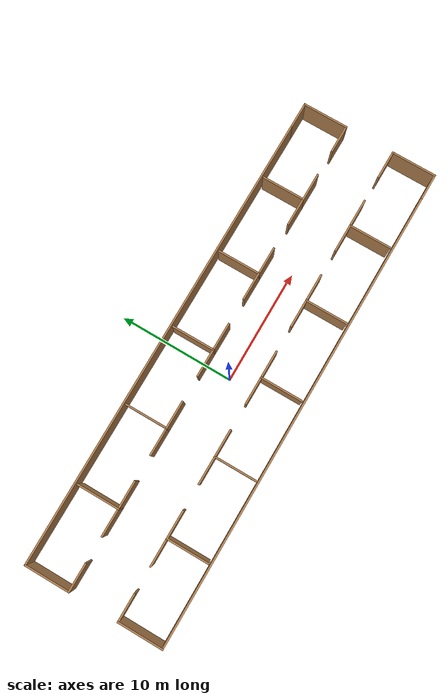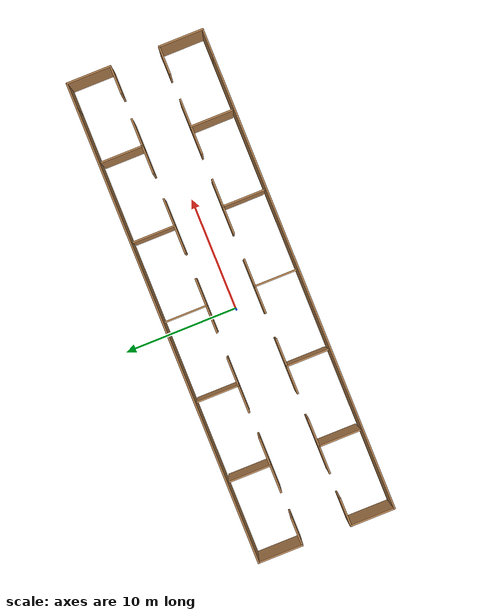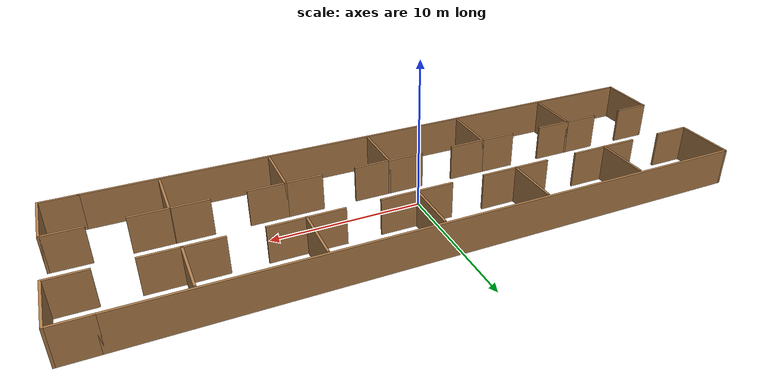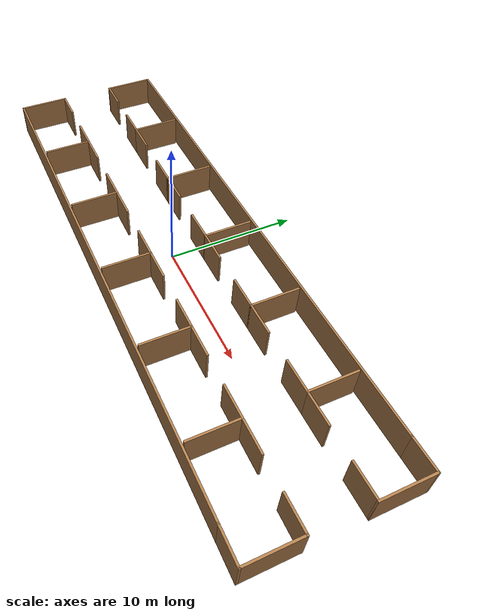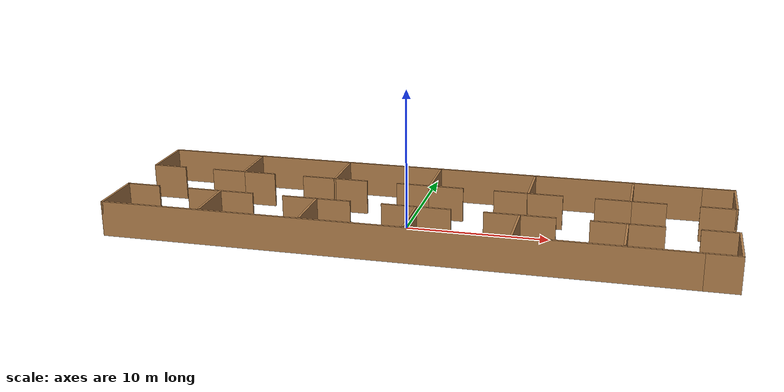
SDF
<?xml version='1.0'?>
<sdf version='1.7'>
  <model name='office'>
    <pose>1.15 0 0 0 -0 0</pose>
    <link name='Wall_0'>
      <collision name='Wall_0_Collision'>
        <geometry>
          <box>
            <size>40.15 0.15 2.5</size>
          </box>
        </geometry>
        <pose>0 0 1.25 0 -0 0</pose>
      </collision>
      <visual name='Wall_0_Visual'>
        <pose>0 0 1.25 0 -0 0</pose>
        <geometry>
          <box>
            <size>40.15 0.15 2.5</size>
          </box>
        </geometry>
        <material>
          <script>
            <uri>file://media/materials/scripts/gazebo.material</uri>
            <name>Gazebo/Wood</name>
          </script>
          <ambient>1 1 1 1</ambient>
        </material>
        <meta>
          <layer>0</layer>
        </meta>
      </visual>
      <pose>-1.15 -6 0 0 -0 0</pose>
    </link>
    <link name='Wall_16'>
      <collision name='Wall_16_Collision'>
        <geometry>
          <box>
            <size>4 0.15 2.5</size>
          </box>
        </geometry>
        <pose>0 0 1.25 0 -0 0</pose>
      </collision>
      <visual name='Wall_16_Visual'>
        <pose>0 0 1.25 0 -0 0</pose>
        <geometry>
          <box>
            <size>4 0.15 2.5</size>
          </box>
        </geometry>
        <material>
          <script>
            <uri>file://media/materials/scripts/gazebo.material</uri>
            <name>Gazebo/Wood</name>
          </script>
          <ambient>1 1 1 1</ambient>
        </material>
        <meta>
          <layer>0</layer>
        </meta>
      </visual>
      <pose>-21.15 -4.075 0 0 -0 1.5708</pose>
    </link>
    <link name='Wall_2'>
      <collision name='Wall_2_Collision'>
        <geometry>
          <box>
            <size>40.15 0.15 2.5</size>
          </box>
        </geometry>
        <pose>0 0 1.25 0 -0 0</pose>
      </collision>
      <visual name='Wall_2_Visual'>
        <pose>0 0 1.25 0 -0 0</pose>
        <geometry>
          <box>
            <size>40.15 0.15 2.5</size>
          </box>
        </geometry>
        <material>
          <script>
            <uri>file://media/materials/scripts/gazebo.material</uri>
            <name>Gazebo/Wood</name>
          </script>
          <ambient>1 1 1 1</ambient>
        </material>
        <meta>
          <layer>0</layer>
        </meta>
      </visual>
      <pose>-1.15 6 0 0 -0 0</pose>
    </link>
    <link name='Wall_20'>
      <collision name='Wall_20_Collision'>
        <geometry>
          <box>
            <size>2.46502 0.15 2.5</size>
          </box>
        </geometry>
        <pose>0 0 1.25 0 -0 0</pose>
      </collision>
      <visual name='Wall_20_Visual'>
        <pose>0 0 1.25 0 -0 0</pose>
        <geometry>
          <box>
            <size>2.46502 0.15 2.5</size>
          </box>
        </geometry>
        <material>
          <script>
            <uri>file://media/materials/scripts/gazebo.material</uri>
            <name>Gazebo/Wood</name>
          </script>
          <ambient>1 1 1 1</ambient>
        </material>
        <meta>
          <layer>0</layer>
        </meta>
      </visual>
      <pose>-19.9925 -2.15 0 0 -0 0</pose>
    </link>
    <link name='Wall_26'>
      <collision name='Wall_26_Collision'>
        <geometry>
          <box>
            <size>2.5 0.15 2.5</size>
          </box>
        </geometry>
        <pose>0 0 1.25 0 -0 0</pose>
      </collision>
      <visual name='Wall_26_Visual'>
        <pose>0 0 1.25 0 -0 0</pose>
        <geometry>
          <box>
            <size>2.5 0.15 2.5</size>
          </box>
        </geometry>
        <material>
          <script>
            <uri>file://media/materials/scripts/gazebo.material</uri>
            <name>Gazebo/Wood</name>
          </script>
          <ambient>1 1 1 1</ambient>
        </material>
        <meta>
          <layer>0</layer>
        </meta>
      </visual>
      <pose>-5.875 -2.15 0 0 -0 0</pose>
    </link>
    <link name='Wall_28'>
      <collision name='Wall_28_Collision'>
        <geometry>
          <box>
            <size>2.5 0.15 2.5</size>
          </box>
        </geometry>
        <pose>0 0 1.25 0 -0 0</pose>
      </collision>
      <visual name='Wall_28_Visual'>
        <pose>0 0 1.25 0 -0 0</pose>
        <geometry>
          <box>
            <size>2.5 0.15 2.5</size>
          </box>
        </geometry>
        <material>
          <script>
            <uri>file://media/materials/scripts/gazebo.material</uri>
            <name>Gazebo/Wood</name>
          </script>
          <ambient>1 1 1 1</ambient>
        </material>
        <meta>
          <layer>0</layer>
        </meta>
      </visual>
      <pose>-1.175 -2.15 0 0 -0 0</pose>
    </link>
    <link name='Wall_29'>
      <collision name='Wall_29_Collision'>
        <geometry>
          <box>
            <size>2.5 0.15 2.5</size>
          </box>
        </geometry>
        <pose>0 0 1.25 0 -0 0</pose>
      </collision>
      <visual name='Wall_29_Visual'>
        <pose>0 0 1.25 0 -0 0</pose>
        <geometry>
          <box>
            <size>2.5 0.15 2.5</size>
          </box>
        </geometry>
        <material>
          <script>
            <uri>file://media/materials/scripts/gazebo.material</uri>
            <name>Gazebo/Wood</name>
          </script>
          <ambient>1 1 1 1</ambient>
        </material>
        <meta>
          <layer>0</layer>
        </meta>
      </visual>
      <pose>1.175 -2.15 0 0 -0 0</pose>
    </link>
    <link name='Wall_31'>
      <collision name='Wall_31_Collision'>
        <geometry>
          <box>
            <size>2.5 0.15 2.5</size>
          </box>
        </geometry>
        <pose>0 0 1.25 0 -0 0</pose>
      </collision>
      <visual name='Wall_31_Visual'>
        <pose>0 0 1.25 0 -0 0</pose>
        <geometry>
          <box>
            <size>2.5 0.15 2.5</size>
          </box>
        </geometry>
        <material>
          <script>
            <uri>file://media/materials/scripts/gazebo.material</uri>
            <name>Gazebo/Wood</name>
          </script>
          <ambient>1 1 1 1</ambient>
        </material>
        <meta>
          <layer>0</layer>
        </meta>
      </visual>
      <pose>5.875 -2.15 0 0 -0 0</pose>
    </link>
    <link name='Wall_32'>
      <collision name='Wall_32_Collision'>
        <geometry>
          <box>
            <size>2.5 0.15 2.5</size>
          </box>
        </geometry>
        <pose>0 0 1.25 0 -0 0</pose>
      </collision>
      <visual name='Wall_32_Visual'>
        <pose>0 0 1.25 0 -0 0</pose>
        <geometry>
          <box>
            <size>2.5 0.15 2.5</size>
          </box>
        </geometry>
        <material>
          <script>
            <uri>file://media/materials/scripts/gazebo.material</uri>
            <name>Gazebo/Wood</name>
          </script>
          <ambient>1 1 1 1</ambient>
        </material>
        <meta>
          <layer>0</layer>
        </meta>
      </visual>
      <pose>8.225 -2.15 0 0 -0 0</pose>
    </link>
    <link name='Wall_34'>
      <collision name='Wall_34_Collision'>
        <geometry>
          <box>
            <size>2.5 0.15 2.5</size>
          </box>
        </geometry>
        <pose>0 0 1.25 0 -0 0</pose>
      </collision>
      <visual name='Wall_34_Visual'>
        <pose>0 0 1.25 0 -0 0</pose>
        <geometry>
          <box>
            <size>2.5 0.15 2.5</size>
          </box>
        </geometry>
        <material>
          <script>
            <uri>file://media/materials/scripts/gazebo.material</uri>
            <name>Gazebo/Wood</name>
          </script>
          <ambient>1 1 1 1</ambient>
        </material>
        <meta>
          <layer>0</layer>
        </meta>
      </visual>
      <pose>12.925 -2.15 0 0 -0 0</pose>
    </link>
    <link name='Wall_37'>
      <collision name='Wall_37_Collision'>
        <geometry>
          <box>
            <size>2.5 0.15 2.5</size>
          </box>
        </geometry>
        <pose>0 0 1.25 0 -0 0</pose>
      </collision>
      <visual name='Wall_37_Visual'>
        <pose>0 0 1.25 0 -0 0</pose>
        <geometry>
          <box>
            <size>2.5 0.15 2.5</size>
          </box>
        </geometry>
        <material>
          <script>
            <uri>file://media/materials/scripts/gazebo.material</uri>
            <name>Gazebo/Wood</name>
          </script>
          <ambient>1 1 1 1</ambient>
        </material>
        <meta>
          <layer>0</layer>
        </meta>
      </visual>
      <pose>15.275 -2.15 0 0 -0 0</pose>
    </link>
    <link name='Wall_4'>
      <collision name='Wall_4_Collision'>
        <geometry>
          <box>
            <size>4 0.15 2.5</size>
          </box>
        </geometry>
        <pose>0 0 1.25 0 -0 0</pose>
      </collision>
      <visual name='Wall_4_Visual'>
        <pose>0 0 1.25 0 -0 0</pose>
        <geometry>
          <box>
            <size>4 0.15 2.5</size>
          </box>
        </geometry>
        <material>
          <script>
            <uri>file://media/materials/scripts/gazebo.material</uri>
            <name>Gazebo/Wood</name>
          </script>
          <ambient>1 1 1 1</ambient>
        </material>
        <meta>
          <layer>0</layer>
        </meta>
      </visual>
      <pose>-21.15 4.075 0 0 -0 -1.5708</pose>
    </link>
    <link name='Wall_41'>
      <collision name='Wall_41_Collision'>
        <geometry>
          <box>
            <size>2.5 0.15 2.5</size>
          </box>
        </geometry>
        <pose>0 0 1.25 0 -0 0</pose>
      </collision>
      <visual name='Wall_41_Visual'>
        <pose>0 0 1.25 0 -0 0</pose>
        <geometry>
          <box>
            <size>2.5 0.15 2.5</size>
          </box>
        </geometry>
        <material>
          <script>
            <uri>file://media/materials/scripts/gazebo.material</uri>
            <name>Gazebo/Wood</name>
          </script>
          <ambient>1 1 1 1</ambient>
        </material>
        <meta>
          <layer>0</layer>
        </meta>
      </visual>
      <pose>-19.975 2.15 0 0 -0 0</pose>
    </link>
    <link name='Wall_43'>
      <collision name='Wall_43_Collision'>
        <geometry>
          <box>
            <size>2.5 0.15 2.5</size>
          </box>
        </geometry>
        <pose>0 0 1.25 0 -0 0</pose>
      </collision>
      <visual name='Wall_43_Visual'>
        <pose>0 0 1.25 0 -0 0</pose>
        <geometry>
          <box>
            <size>2.5 0.15 2.5</size>
          </box>
        </geometry>
        <material>
          <script>
            <uri>file://media/materials/scripts/gazebo.material</uri>
            <name>Gazebo/Wood</name>
          </script>
          <ambient>1 1 1 1</ambient>
        </material>
        <meta>
          <layer>0</layer>
        </meta>
      </visual>
      <pose>-15.275 2.15 0 0 -0 0</pose>
    </link>
    <link name='Wall_44'>
      <collision name='Wall_44_Collision'>
        <geometry>
          <box>
            <size>2.5 0.15 2.5</size>
          </box>
        </geometry>
        <pose>0 0 1.25 0 -0 0</pose>
      </collision>
      <visual name='Wall_44_Visual'>
        <pose>0 0 1.25 0 -0 0</pose>
        <geometry>
          <box>
            <size>2.5 0.15 2.5</size>
          </box>
        </geometry>
        <material>
          <script>
            <uri>file://media/materials/scripts/gazebo.material</uri>
            <name>Gazebo/Wood</name>
          </script>
          <ambient>1 1 1 1</ambient>
        </material>
        <meta>
          <layer>0</layer>
        </meta>
      </visual>
      <pose>-12.925 2.15 0 0 -0 0</pose>
    </link>
    <link name='Wall_46'>
      <collision name='Wall_46_Collision'>
        <geometry>
          <box>
            <size>2.5 0.15 2.5</size>
          </box>
        </geometry>
        <pose>0 0 1.25 0 -0 0</pose>
      </collision>
      <visual name='Wall_46_Visual'>
        <pose>0 0 1.25 0 -0 0</pose>
        <geometry>
          <box>
            <size>2.5 0.15 2.5</size>
          </box>
        </geometry>
        <material>
          <script>
            <uri>file://media/materials/scripts/gazebo.material</uri>
            <name>Gazebo/Wood</name>
          </script>
          <ambient>1 1 1 1</ambient>
        </material>
        <meta>
          <layer>0</layer>
        </meta>
      </visual>
      <pose>-8.225 2.15 0 0 -0 0</pose>
    </link>
    <link name='Wall_47'>
      <collision name='Wall_47_Collision'>
        <geometry>
          <box>
            <size>2.5 0.15 2.5</size>
          </box>
        </geometry>
        <pose>0 0 1.25 0 -0 0</pose>
      </collision>
      <visual name='Wall_47_Visual'>
        <pose>0 0 1.25 0 -0 0</pose>
        <geometry>
          <box>
            <size>2.5 0.15 2.5</size>
          </box>
        </geometry>
        <material>
          <script>
            <uri>file://media/materials/scripts/gazebo.material</uri>
            <name>Gazebo/Wood</name>
          </script>
          <ambient>1 1 1 1</ambient>
        </material>
        <meta>
          <layer>0</layer>
        </meta>
      </visual>
      <pose>-5.875 2.15 0 0 -0 0</pose>
    </link>
    <link name='Wall_49'>
      <collision name='Wall_49_Collision'>
        <geometry>
          <box>
            <size>2.5 0.15 2.5</size>
          </box>
        </geometry>
        <pose>0 0 1.25 0 -0 0</pose>
      </collision>
      <visual name='Wall_49_Visual'>
        <pose>0 0 1.25 0 -0 0</pose>
        <geometry>
          <box>
            <size>2.5 0.15 2.5</size>
          </box>
        </geometry>
        <material>
          <script>
            <uri>file://media/materials/scripts/gazebo.material</uri>
            <name>Gazebo/Wood</name>
          </script>
          <ambient>1 1 1 1</ambient>
        </material>
        <meta>
          <layer>0</layer>
        </meta>
      </visual>
      <pose>-1.175 2.15 0 0 -0 0</pose>
    </link>
    <link name='Wall_50'>
      <collision name='Wall_50_Collision'>
        <geometry>
          <box>
            <size>2.5 0.15 2.5</size>
          </box>
        </geometry>
        <pose>0 0 1.25 0 -0 0</pose>
      </collision>
      <visual name='Wall_50_Visual'>
        <pose>0 0 1.25 0 -0 0</pose>
        <geometry>
          <box>
            <size>2.5 0.15 2.5</size>
          </box>
        </geometry>
        <material>
          <script>
            <uri>file://media/materials/scripts/gazebo.material</uri>
            <name>Gazebo/Wood</name>
          </script>
          <ambient>1 1 1 1</ambient>
        </material>
        <meta>
          <layer>0</layer>
        </meta>
      </visual>
      <pose>1.175 2.15 0 0 -0 0</pose>
    </link>
    <link name='Wall_52'>
      <collision name='Wall_52_Collision'>
        <geometry>
          <box>
            <size>2.5 0.15 2.5</size>
          </box>
        </geometry>
        <pose>0 0 1.25 0 -0 0</pose>
      </collision>
      <visual name='Wall_52_Visual'>
        <pose>0 0 1.25 0 -0 0</pose>
        <geometry>
          <box>
            <size>2.5 0.15 2.5</size>
          </box>
        </geometry>
        <material>
          <script>
            <uri>file://media/materials/scripts/gazebo.material</uri>
            <name>Gazebo/Wood</name>
          </script>
          <ambient>1 1 1 1</ambient>
        </material>
        <meta>
          <layer>0</layer>
        </meta>
      </visual>
      <pose>5.875 2.15 0 0 -0 0</pose>
    </link>
    <link name='Wall_53'>
      <collision name='Wall_53_Collision'>
        <geometry>
          <box>
            <size>2.5 0.15 2.5</size>
          </box>
        </geometry>
        <pose>0 0 1.25 0 -0 0</pose>
      </collision>
      <visual name='Wall_53_Visual'>
        <pose>0 0 1.25 0 -0 0</pose>
        <geometry>
          <box>
            <size>2.5 0.15 2.5</size>
          </box>
        </geometry>
        <material>
          <script>
            <uri>file://media/materials/scripts/gazebo.material</uri>
            <name>Gazebo/Wood</name>
          </script>
          <ambient>1 1 1 1</ambient>
        </material>
        <meta>
          <layer>0</layer>
        </meta>
      </visual>
      <pose>8.225 2.15 0 0 -0 0</pose>
    </link>
    <link name='Wall_55'>
      <collision name='Wall_55_Collision'>
        <geometry>
          <box>
            <size>2.5 0.15 2.5</size>
          </box>
        </geometry>
        <pose>0 0 1.25 0 -0 0</pose>
      </collision>
      <visual name='Wall_55_Visual'>
        <pose>0 0 1.25 0 -0 0</pose>
        <geometry>
          <box>
            <size>2.5 0.15 2.5</size>
          </box>
        </geometry>
        <material>
          <script>
            <uri>file://media/materials/scripts/gazebo.material</uri>
            <name>Gazebo/Wood</name>
          </script>
          <ambient>1 1 1 1</ambient>
        </material>
        <meta>
          <layer>0</layer>
        </meta>
      </visual>
      <pose>12.925 2.15 0 0 -0 0</pose>
    </link>
    <link name='Wall_56'>
      <collision name='Wall_56_Collision'>
        <geometry>
          <box>
            <size>2.5 0.15 2.5</size>
          </box>
        </geometry>
        <pose>0 0 1.25 0 -0 0</pose>
      </collision>
      <visual name='Wall_56_Visual'>
        <pose>0 0 1.25 0 -0 0</pose>
        <geometry>
          <box>
            <size>2.5 0.15 2.5</size>
          </box>
        </geometry>
        <material>
          <script>
            <uri>file://media/materials/scripts/gazebo.material</uri>
            <name>Gazebo/Wood</name>
          </script>
          <ambient>1 1 1 1</ambient>
        </material>
        <meta>
          <layer>0</layer>
        </meta>
      </visual>
      <pose>15.275 2.15 0 0 -0 0</pose>
    </link>
    <link name='Wall_60'>
      <collision name='Wall_60_Collision'>
        <geometry>
          <box>
            <size>3.75 0.15 2.5</size>
          </box>
        </geometry>
        <pose>0 0 1.25 0 -0 0</pose>
      </collision>
      <visual name='Wall_60_Visual'>
        <pose>0 0 1.25 0 -0 0</pose>
        <geometry>
          <box>
            <size>3.75 0.15 2.5</size>
          </box>
        </geometry>
        <material>
          <script>
            <uri>file://media/materials/scripts/gazebo.material</uri>
            <name>Gazebo/Wood</name>
          </script>
          <ambient>1 1 1 1</ambient>
        </material>
        <meta>
          <layer>0</layer>
        </meta>
      </visual>
      <pose>-14.1 3.95 0 0 -0 1.5708</pose>
    </link>
    <link name='Wall_65'>
      <collision name='Wall_65_Collision'>
        <geometry>
          <box>
            <size>2.5 0.15 2.5</size>
          </box>
        </geometry>
        <pose>0 0 1.25 0 -0 0</pose>
      </collision>
      <visual name='Wall_65_Visual'>
        <pose>0 0 1.25 0 -0 0</pose>
        <geometry>
          <box>
            <size>2.5 0.15 2.5</size>
          </box>
        </geometry>
        <material>
          <script>
            <uri>file://media/materials/scripts/gazebo.material</uri>
            <name>Gazebo/Wood</name>
          </script>
          <ambient>1 1 1 1</ambient>
        </material>
        <meta>
          <layer>0</layer>
        </meta>
      </visual>
      <pose>-15.31 -2.15 0 0 -0 0</pose>
    </link>
    <link name='Wall_66'>
      <collision name='Wall_66_Collision'>
        <geometry>
          <box>
            <size>2.5 0.15 2.5</size>
          </box>
        </geometry>
        <pose>0 0 1.25 0 -0 0</pose>
      </collision>
      <visual name='Wall_66_Visual'>
        <pose>0 0 1.25 0 -0 0</pose>
        <geometry>
          <box>
            <size>2.5 0.15 2.5</size>
          </box>
        </geometry>
        <material>
          <script>
            <uri>file://media/materials/scripts/gazebo.material</uri>
            <name>Gazebo/Wood</name>
          </script>
          <ambient>1 1 1 1</ambient>
        </material>
        <meta>
          <layer>0</layer>
        </meta>
      </visual>
      <pose>-12.96 -2.15 0 0 -0 0</pose>
    </link>
    <link name='Wall_68'>
      <collision name='Wall_68_Collision'>
        <geometry>
          <box>
            <size>3.75 0.15 2.5</size>
          </box>
        </geometry>
        <pose>0 0 1.25 0 -0 0</pose>
      </collision>
      <visual name='Wall_68_Visual'>
        <pose>0 0 1.25 0 -0 0</pose>
        <geometry>
          <box>
            <size>3.75 0.15 2.5</size>
          </box>
        </geometry>
        <material>
          <script>
            <uri>file://media/materials/scripts/gazebo.material</uri>
            <name>Gazebo/Wood</name>
          </script>
          <ambient>1 1 1 1</ambient>
        </material>
        <meta>
          <layer>0</layer>
        </meta>
      </visual>
      <pose>-14.135 -3.95 0 0 -0 -1.5708</pose>
    </link>
    <link name='Wall_71'>
      <collision name='Wall_71_Collision'>
        <geometry>
          <box>
            <size>2.53498 0.15 2.5</size>
          </box>
        </geometry>
        <pose>0 0 1.25 0 -0 0</pose>
      </collision>
      <visual name='Wall_71_Visual'>
        <pose>0 0 1.25 0 -0 0</pose>
        <geometry>
          <box>
            <size>2.53498 0.15 2.5</size>
          </box>
        </geometry>
        <material>
          <script>
            <uri>file://media/materials/scripts/gazebo.material</uri>
            <name>Gazebo/Wood</name>
          </script>
          <ambient>1 1 1 1</ambient>
        </material>
        <meta>
          <layer>0</layer>
        </meta>
      </visual>
      <pose>-8.24249 -2.15 0 0 -0 0</pose>
    </link>
    <link name='Wall_73'>
      <collision name='Wall_73_Collision'>
        <geometry>
          <box>
            <size>3.75 0.15 2.5</size>
          </box>
        </geometry>
        <pose>0 0 1.25 0 -0 0</pose>
      </collision>
      <visual name='Wall_73_Visual'>
        <pose>0 0 1.25 0 -0 0</pose>
        <geometry>
          <box>
            <size>3.75 0.15 2.5</size>
          </box>
        </geometry>
        <material>
          <script>
            <uri>file://media/materials/scripts/gazebo.material</uri>
            <name>Gazebo/Wood</name>
          </script>
          <ambient>1 1 1 1</ambient>
        </material>
        <meta>
          <layer>0</layer>
        </meta>
      </visual>
      <pose>-7.05 3.95 0 0 -0 1.5708</pose>
    </link>
    <link name='Wall_75'>
      <collision name='Wall_75_Collision'>
        <geometry>
          <box>
            <size>3.75 0.15 2.5</size>
          </box>
        </geometry>
        <pose>0 0 1.25 0 -0 0</pose>
      </collision>
      <visual name='Wall_75_Visual'>
        <pose>0 0 1.25 0 -0 0</pose>
        <geometry>
          <box>
            <size>3.75 0.15 2.5</size>
          </box>
        </geometry>
        <material>
          <script>
            <uri>file://media/materials/scripts/gazebo.material</uri>
            <name>Gazebo/Wood</name>
          </script>
          <ambient>1 1 1 1</ambient>
        </material>
        <meta>
          <layer>0</layer>
        </meta>
      </visual>
      <pose>-7.05 -3.95 0 0 -0 -1.5708</pose>
    </link>
    <link name='Wall_77'>
      <collision name='Wall_77_Collision'>
        <geometry>
          <box>
            <size>3.75 0.15 2.5</size>
          </box>
        </geometry>
        <pose>0 0 1.25 0 -0 0</pose>
      </collision>
      <visual name='Wall_77_Visual'>
        <pose>0 0 1.25 0 -0 0</pose>
        <geometry>
          <box>
            <size>3.75 0.15 2.5</size>
          </box>
        </geometry>
        <material>
          <script>
            <uri>file://media/materials/scripts/gazebo.material</uri>
            <name>Gazebo/Wood</name>
          </script>
          <ambient>1 1 1 1</ambient>
        </material>
        <meta>
          <layer>0</layer>
        </meta>
      </visual>
      <pose>0 3.95 0 0 -0 1.5708</pose>
    </link>
    <link name='Wall_79'>
      <collision name='Wall_79_Collision'>
        <geometry>
          <box>
            <size>3.75 0.15 2.5</size>
          </box>
        </geometry>
        <pose>0 0 1.25 0 -0 0</pose>
      </collision>
      <visual name='Wall_79_Visual'>
        <pose>0 0 1.25 0 -0 0</pose>
        <geometry>
          <box>
            <size>3.75 0.15 2.5</size>
          </box>
        </geometry>
        <material>
          <script>
            <uri>file://media/materials/scripts/gazebo.material</uri>
            <name>Gazebo/Wood</name>
          </script>
          <ambient>1 1 1 1</ambient>
        </material>
        <meta>
          <layer>0</layer>
        </meta>
      </visual>
      <pose>0 -3.95 0 0 -0 -1.5708</pose>
    </link>
    <link name='Wall_81'>
      <collision name='Wall_81_Collision'>
        <geometry>
          <box>
            <size>3.75 0.15 2.5</size>
          </box>
        </geometry>
        <pose>0 0 1.25 0 -0 0</pose>
      </collision>
      <visual name='Wall_81_Visual'>
        <pose>0 0 1.25 0 -0 0</pose>
        <geometry>
          <box>
            <size>3.75 0.15 2.5</size>
          </box>
        </geometry>
        <material>
          <script>
            <uri>file://media/materials/scripts/gazebo.material</uri>
            <name>Gazebo/Wood</name>
          </script>
          <ambient>1 1 1 1</ambient>
        </material>
        <meta>
          <layer>0</layer>
        </meta>
      </visual>
      <pose>7.05 3.95 0 0 -0 1.5708</pose>
    </link>
    <link name='Wall_83'>
      <collision name='Wall_83_Collision'>
        <geometry>
          <box>
            <size>3.75 0.15 2.5</size>
          </box>
        </geometry>
        <pose>0 0 1.25 0 -0 0</pose>
      </collision>
      <visual name='Wall_83_Visual'>
        <pose>0 0 1.25 0 -0 0</pose>
        <geometry>
          <box>
            <size>3.75 0.15 2.5</size>
          </box>
        </geometry>
        <material>
          <script>
            <uri>file://media/materials/scripts/gazebo.material</uri>
            <name>Gazebo/Wood</name>
          </script>
          <ambient>1 1 1 1</ambient>
        </material>
        <meta>
          <layer>0</layer>
        </meta>
      </visual>
      <pose>7.05 -3.95 0 0 -0 -1.5708</pose>
    </link>
    <link name='Wall_85'>
      <collision name='Wall_85_Collision'>
        <geometry>
          <box>
            <size>3.75 0.15 2.5</size>
          </box>
        </geometry>
        <pose>0 0 1.25 0 -0 0</pose>
      </collision>
      <visual name='Wall_85_Visual'>
        <pose>0 0 1.25 0 -0 0</pose>
        <geometry>
          <box>
            <size>3.75 0.15 2.5</size>
          </box>
        </geometry>
        <material>
          <script>
            <uri>file://media/materials/scripts/gazebo.material</uri>
            <name>Gazebo/Wood</name>
          </script>
          <ambient>1 1 1 1</ambient>
        </material>
        <meta>
          <layer>0</layer>
        </meta>
      </visual>
      <pose>14.1 3.95 0 0 -0 1.5708</pose>
    </link>
    <link name='Wall_87'>
      <collision name='Wall_87_Collision'>
        <geometry>
          <box>
            <size>3.75 0.15 2.5</size>
          </box>
        </geometry>
        <pose>0 0 1.25 0 -0 0</pose>
      </collision>
      <visual name='Wall_87_Visual'>
        <pose>0 0 1.25 0 -0 0</pose>
        <geometry>
          <box>
            <size>3.75 0.15 2.5</size>
          </box>
        </geometry>
        <material>
          <script>
            <uri>file://media/materials/scripts/gazebo.material</uri>
            <name>Gazebo/Wood</name>
          </script>
          <ambient>1 1 1 1</ambient>
        </material>
        <meta>
          <layer>0</layer>
        </meta>
      </visual>
      <pose>14.1 -3.95 0 0 -0 -1.5708</pose>
    </link>
    <link name='Wall_90'>
      <collision name='Wall_90_Collision'>
        <geometry>
          <box>
            <size>2.5 0.15 2.5</size>
          </box>
        </geometry>
        <pose>0 0 1.25 0 -0 0</pose>
      </collision>
      <visual name='Wall_90_Visual'>
        <pose>0 0 1.25 0 -0 0</pose>
        <geometry>
          <box>
            <size>2.5 0.15 2.5</size>
          </box>
        </geometry>
        <material>
          <script>
            <uri>file://media/materials/scripts/gazebo.material</uri>
            <name>Gazebo/Wood</name>
          </script>
          <ambient>1 1 1 1</ambient>
        </material>
        <meta>
          <layer>0</layer>
        </meta>
      </visual>
      <pose>19.975 2.15 0 0 -0 0</pose>
    </link>
    <link name='Wall_91'>
      <collision name='Wall_91_Collision'>
        <geometry>
          <box>
            <size>4 0.15 2.5</size>
          </box>
        </geometry>
        <pose>0 0 1.25 0 -0 0</pose>
      </collision>
      <visual name='Wall_91_Visual'>
        <pose>0 0 1.25 0 -0 0</pose>
        <geometry>
          <box>
            <size>4 0.15 2.5</size>
          </box>
        </geometry>
        <material>
          <script>
            <uri>file://media/materials/scripts/gazebo.material</uri>
            <name>Gazebo/Wood</name>
          </script>
          <ambient>1 1 1 1</ambient>
        </material>
        <meta>
          <layer>0</layer>
        </meta>
      </visual>
      <pose>21.15 4.075 0 0 -0 1.5708</pose>
    </link>
    <link name='Wall_92'>
      <collision name='Wall_92_Collision'>
        <geometry>
          <box>
            <size>2.45 0.15 2.5</size>
          </box>
        </geometry>
        <pose>0 0 1.25 0 -0 0</pose>
      </collision>
      <visual name='Wall_92_Visual'>
        <pose>0 0 1.25 0 -0 0</pose>
        <geometry>
          <box>
            <size>2.45 0.15 2.5</size>
          </box>
        </geometry>
        <material>
          <script>
            <uri>file://media/materials/scripts/gazebo.material</uri>
            <name>Gazebo/Wood</name>
          </script>
          <ambient>1 1 1 1</ambient>
        </material>
        <meta>
          <layer>0</layer>
        </meta>
      </visual>
      <pose>20 6 0 0 -0 3.14159</pose>
    </link>
    <link name='Wall_94'>
      <collision name='Wall_94_Collision'>
        <geometry>
          <box>
            <size>2.5 0.15 2.5</size>
          </box>
        </geometry>
        <pose>0 0 1.25 0 -0 0</pose>
      </collision>
      <visual name='Wall_94_Visual'>
        <pose>0 0 1.25 0 -0 0</pose>
        <geometry>
          <box>
            <size>2.5 0.15 2.5</size>
          </box>
        </geometry>
        <material>
          <script>
            <uri>file://media/materials/scripts/gazebo.material</uri>
            <name>Gazebo/Wood</name>
          </script>
          <ambient>1 1 1 1</ambient>
        </material>
        <meta>
          <layer>0</layer>
        </meta>
      </visual>
      <pose>19.975 -2.15 0 0 -0 0</pose>
    </link>
    <link name='Wall_95'>
      <collision name='Wall_95_Collision'>
        <geometry>
          <box>
            <size>4 0.15 2.5</size>
          </box>
        </geometry>
        <pose>0 0 1.25 0 -0 0</pose>
      </collision>
      <visual name='Wall_95_Visual'>
        <pose>0 0 1.25 0 -0 0</pose>
        <geometry>
          <box>
            <size>4 0.15 2.5</size>
          </box>
        </geometry>
        <material>
          <script>
            <uri>file://media/materials/scripts/gazebo.material</uri>
            <name>Gazebo/Wood</name>
          </script>
          <ambient>1 1 1 1</ambient>
        </material>
        <meta>
          <layer>0</layer>
        </meta>
      </visual>
      <pose>21.15 -4.075 0 0 -0 -1.5708</pose>
    </link>
    <link name='Wall_96'>
      <collision name='Wall_96_Collision'>
        <geometry>
          <box>
            <size>2.45 0.15 2.5</size>
          </box>
        </geometry>
        <pose>0 0 1.25 0 -0 0</pose>
      </collision>
      <visual name='Wall_96_Visual'>
        <pose>0 0 1.25 0 -0 0</pose>
        <geometry>
          <box>
            <size>2.45 0.15 2.5</size>
          </box>
        </geometry>
        <material>
          <script>
            <uri>file://media/materials/scripts/gazebo.material</uri>
            <name>Gazebo/Wood</name>
          </script>
          <ambient>1 1 1 1</ambient>
        </material>
        <meta>
          <layer>0</layer>
        </meta>
      </visual>
      <pose>20 -6 0 0 -0 3.14159</pose>
    </link>
    <static>1</static>
  </model>
</sdf>
